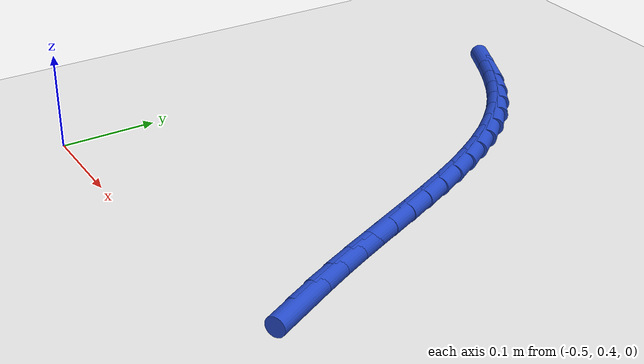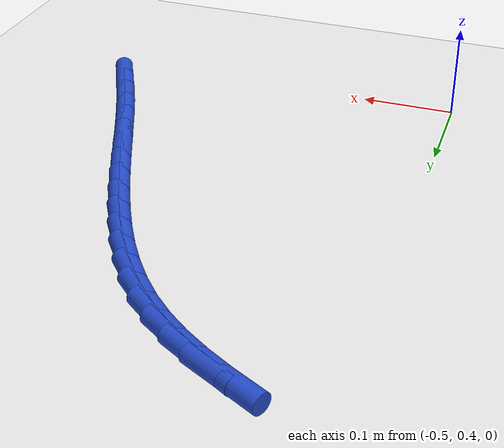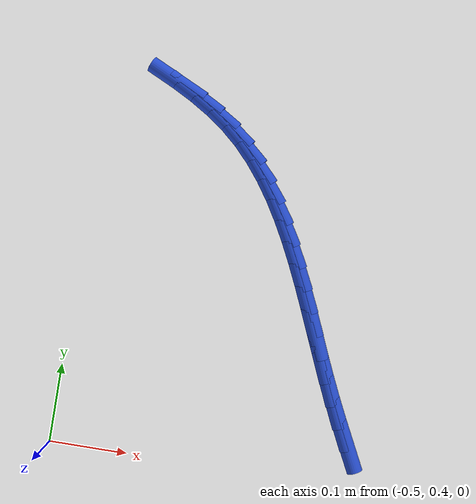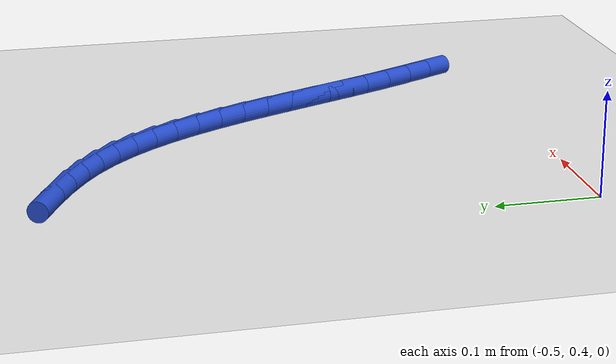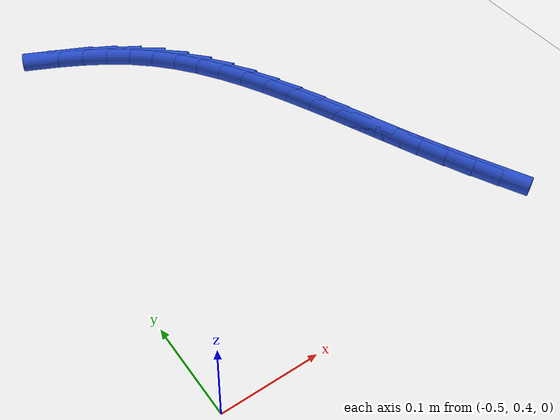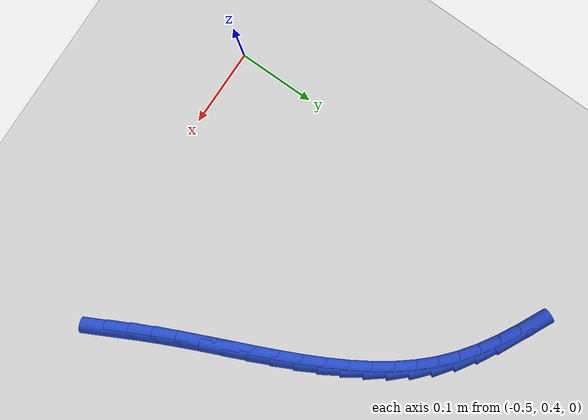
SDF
<sdf version="1.6">
 <world name="default">
  <model name="ground_plane">
   <static>1</static>
   <link name="link">
    <collision name="collision">
     <geometry><plane><normal>0 0 1</normal><size>100 100</size></plane></geometry>
     <surface><friction><ode><mu>100</mu><mu2>50</mu2></ode></friction></surface>
    </collision>
    <visual name="visual">
     <cast_shadows>0</cast_shadows>
     <geometry><plane><normal>0 0 1</normal><size>100 100</size></plane></geometry>
     <material>
      <script><uri>file://media/materials/scripts/gazebo.material</uri><name>Gazebo/WhiteGlow</name></script>
     </material>
    </visual>
   </link>
  </model>
  <model name="line">
   <link name="link_17">
    <pose>-0.12734260222891042 0.4632571309272422 0.01 0 1.57 -1.1007696513155893</pose>
    <collision name="collision">
     <geometry><cylinder><radius>0.01</radius><length>0.08</length></cylinder></geometry>
    </collision>
    <visual name="visual">
     <material>
      <script><name>Gazebo/Blue</name><uri>file://media/materials/scripts/gazebo.material</uri></script>
     </material>
     <geometry><cylinder><radius>0.01</radius><length>0.08</length></cylinder></geometry>
    </visual>
   </link>
   <link name="link_18">
    <pose>-0.1405707702803292 0.4892968596939755 0.01 0 1.57 -1.1163871686910736</pose>
    <collision name="collision">
     <geometry><cylinder><radius>0.01</radius><length>0.08</length></cylinder></geometry>
    </collision>
    <visual name="visual">
     <material>
      <script><name>Gazebo/Blue</name><uri>file://media/materials/scripts/gazebo.material</uri></script>
     </material>
     <geometry><cylinder><radius>0.01</radius><length>0.08</length></cylinder></geometry>
    </visual>
   </link>
   <link name="link_19">
    <pose>-0.1534944898377207 0.5157525300850763 0.01 0 1.57 -1.1375382432080192</pose>
    <collision name="collision">
     <geometry><cylinder><radius>0.01</radius><length>0.08</length></cylinder></geometry>
    </collision>
    <visual name="visual">
     <material>
      <script><name>Gazebo/Blue</name><uri>file://media/materials/scripts/gazebo.material</uri></script>
     </material>
     <geometry><cylinder><radius>0.01</radius><length>0.08</length></cylinder></geometry>
    </visual>
   </link>
   <link name="link_20">
    <pose>-0.1659633427749695 0.5427081145449563 0.01 0 1.57 -1.1540156139257376</pose>
    <collision name="collision">
     <geometry><cylinder><radius>0.01</radius><length>0.08</length></cylinder></geometry>
    </collision>
    <visual name="visual">
     <material>
      <script><name>Gazebo/Blue</name><uri>file://media/materials/scripts/gazebo.material</uri></script>
     </material>
     <geometry><cylinder><radius>0.01</radius><length>0.08</length></cylinder></geometry>
    </visual>
   </link>
   <link name="link_21">
    <pose>-0.1780651583101275 0.5700434589158023 0.01 0 1.57 -1.161786566662351</pose>
    <collision name="collision">
     <geometry><cylinder><radius>0.01</radius><length>0.08</length></cylinder></geometry>
    </collision>
    <visual name="visual">
     <material>
      <script><name>Gazebo/Blue</name><uri>file://media/materials/scripts/gazebo.material</uri></script>
     </material>
     <geometry><cylinder><radius>0.01</radius><length>0.08</length></cylinder></geometry>
    </visual>
   </link>
   <link name="link_22">
    <pose>-0.18998879220959417 0.5975518510715672 0.01 0 1.57 -1.1609973132092868</pose>
    <collision name="collision">
     <geometry><cylinder><radius>0.01</radius><length>0.08</length></cylinder></geometry>
    </collision>
    <visual name="visual">
     <material>
      <script><name>Gazebo/Blue</name><uri>file://media/materials/scripts/gazebo.material</uri></script>
     </material>
     <geometry><cylinder><radius>0.01</radius><length>0.08</length></cylinder></geometry>
    </visual>
   </link>
   <link name="link_23">
    <pose>-0.20192346564646488 0.6250262658114543 0.01 0 1.57 -1.1516158661648064</pose>
    <collision name="collision">
     <geometry><cylinder><radius>0.01</radius><length>0.08</length></cylinder></geometry>
    </collision>
    <visual name="visual">
     <material>
      <script><name>Gazebo/Blue</name><uri>file://media/materials/scripts/gazebo.material</uri></script>
     </material>
     <geometry><cylinder><radius>0.01</radius><length>0.08</length></cylinder></geometry>
    </visual>
   </link>
   <link name="link_24">
    <pose>-0.21405839979383506 0.6522596779346681 0.01 0 1.57 -1.133416180992991</pose>
    <collision name="collision">
     <geometry><cylinder><radius>0.01</radius><length>0.08</length></cylinder></geometry>
    </collision>
    <visual name="visual">
     <material>
      <script><name>Gazebo/Blue</name><uri>file://media/materials/scripts/gazebo.material</uri></script>
     </material>
     <geometry><cylinder><radius>0.01</radius><length>0.08</length></cylinder></geometry>
    </visual>
   </link>
   <link name="link_25">
    <pose>-0.2265828158248002 0.6790450622404122 0.01 0 1.57 -1.1059874194147943</pose>
    <collision name="collision">
     <geometry><cylinder><radius>0.01</radius><length>0.08</length></cylinder></geometry>
    </collision>
    <visual name="visual">
     <material>
      <script><name>Gazebo/Blue</name><uri>file://media/materials/scripts/gazebo.material</uri></script>
     </material>
     <geometry><cylinder><radius>0.01</radius><length>0.08</length></cylinder></geometry>
    </visual>
   </link>
   <link name="link_26">
    <pose>-0.23968593491245577 0.7051753935278908 0.01 0 1.57 -1.0687585267305069</pose>
    <collision name="collision">
     <geometry><cylinder><radius>0.01</radius><length>0.08</length></cylinder></geometry>
    </collision>
    <visual name="visual">
     <material>
      <script><name>Gazebo/Blue</name><uri>file://media/materials/scripts/gazebo.material</uri></script>
     </material>
     <geometry><cylinder><radius>0.01</radius><length>0.08</length></cylinder></geometry>
    </visual>
   </link>
   <link name="link_27">
    <pose>-0.2535569782298973 0.7304436465963081 0.01 0 1.57 -1.0210497358509645</pose>
    <collision name="collision">
     <geometry><cylinder><radius>0.01</radius><length>0.08</length></cylinder></geometry>
    </collision>
    <visual name="visual">
     <material>
      <script><name>Gazebo/Blue</name><uri>file://media/materials/scripts/gazebo.material</uri></script>
     </material>
     <geometry><cylinder><radius>0.01</radius><length>0.08</length></cylinder></geometry>
    </visual>
   </link>
   <link name="link_28">
    <pose>-0.26838516695022013 0.7546427962448679 0.01 0 1.57 -0.9621685555784789</pose>
    <collision name="collision">
     <geometry><cylinder><radius>0.01</radius><length>0.08</length></cylinder></geometry>
    </collision>
    <visual name="visual">
     <material>
      <script><name>Gazebo/Blue</name><uri>file://media/materials/scripts/gazebo.material</uri></script>
     </material>
     <geometry><cylinder><radius>0.01</radius><length>0.08</length></cylinder></geometry>
    </visual>
   </link>
   <link name="link_29">
    <pose>-0.28435972224651956 0.7775658172727737 0.01 0 1.57 -0.891570905380093</pose>
    <collision name="collision">
     <geometry><cylinder><radius>0.01</radius><length>0.08</length></cylinder></geometry>
    </collision>
    <visual name="visual">
     <material>
      <script><name>Gazebo/Blue</name><uri>file://media/materials/scripts/gazebo.material</uri></script>
     </material>
     <geometry><cylinder><radius>0.01</radius><length>0.08</length></cylinder></geometry>
    </visual>
   </link>
   <link name="link_30">
    <pose>-0.30166986529189144 0.7990056844792305 0.01 0 1.57 -0.8091009865879865</pose>
    <collision name="collision">
     <geometry><cylinder><radius>0.01</radius><length>0.08</length></cylinder></geometry>
    </collision>
    <visual name="visual">
     <material>
      <script><name>Gazebo/Blue</name><uri>file://media/materials/scripts/gazebo.material</uri></script>
     </material>
     <geometry><cylinder><radius>0.01</radius><length>0.08</length></cylinder></geometry>
    </visual>
   </link>
   <link name="link_31">
    <pose>-0.3205048172594309 0.8187553726634414 0.01 0 1.57 -0.7154814919595996</pose>
    <collision name="collision">
     <geometry><cylinder><radius>0.01</radius><length>0.08</length></cylinder></geometry>
    </collision>
    <visual name="visual">
     <material>
      <script><name>Gazebo/Blue</name><uri>file://media/materials/scripts/gazebo.material</uri></script>
     </material>
     <geometry><cylinder><radius>0.01</radius><length>0.08</length></cylinder></geometry>
    </visual>
   </link>
   <link name="link_32">
    <pose>-0.34105053470995733 0.8366117592712243 0.01 0 1.57 -0.6218386338732178</pose>
    <collision name="collision">
     <geometry><cylinder><radius>0.01</radius><length>0.08</length></cylinder></geometry>
    </collision>
    <visual name="visual">
     <material>
      <script><name>Gazebo/Blue</name><uri>file://media/materials/scripts/gazebo.material</uri></script>
     </material>
     <geometry><cylinder><radius>0.01</radius><length>0.08</length></cylinder></geometry>
    </visual>
   </link>
   <link name="link_33">
    <pose>-0.36332338662063507 0.8525744534522284 0.01 0 1.57 -0.5436751232413074</pose>
    <collision name="collision">
     <geometry><cylinder><radius>0.01</radius><length>0.08</length></cylinder></geometry>
    </collision>
    <visual name="visual">
     <material>
      <script><name>Gazebo/Blue</name><uri>file://media/materials/scripts/gazebo.material</uri></script>
     </material>
     <geometry><cylinder><radius>0.01</radius><length>0.08</length></cylinder></geometry>
    </visual>
   </link>
   <link name="link_34">
    <pose>-0.3870909766184695 0.866940448293091 0.01 0 1.57 -0.48218282550513586</pose>
    <collision name="collision">
     <geometry><cylinder><radius>0.01</radius><length>0.08</length></cylinder></geometry>
    </collision>
    <visual name="visual">
     <material>
      <script><name>Gazebo/Blue</name><uri>file://media/materials/scripts/gazebo.material</uri></script>
     </material>
     <geometry><cylinder><radius>0.01</radius><length>0.08</length></cylinder></geometry>
    </visual>
   </link>
   <link name="link_35">
    <pose>-0.41210107581772487 0.8800304454504557 0.01 0 1.57 -0.4366647646260139</pose>
    <collision name="collision">
     <geometry><cylinder><radius>0.01</radius><length>0.08</length></cylinder></geometry>
    </collision>
    <visual name="visual">
     <material>
      <script><name>Gazebo/Blue</name><uri>file://media/materials/scripts/gazebo.material</uri></script>
     </material>
     <geometry><cylinder><radius>0.01</radius><length>0.08</length></cylinder></geometry>
    </visual>
   </link>
  </model>
 </world>
</sdf>
